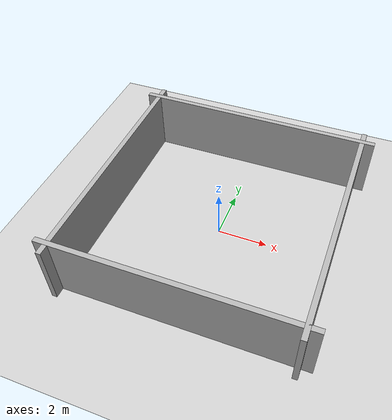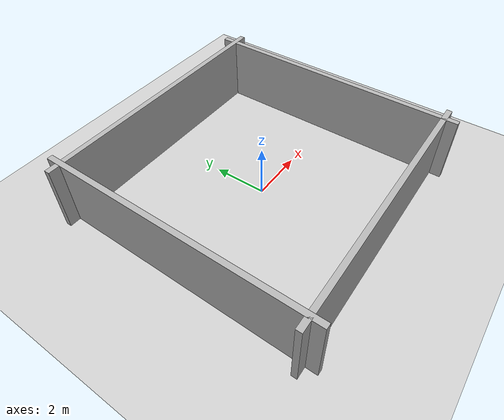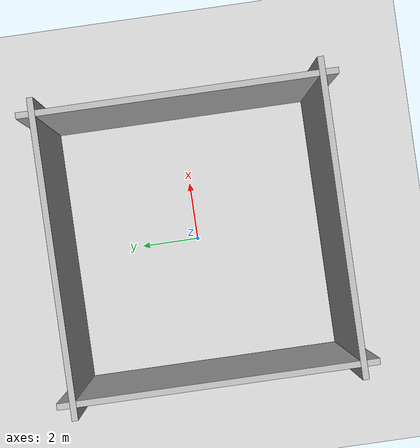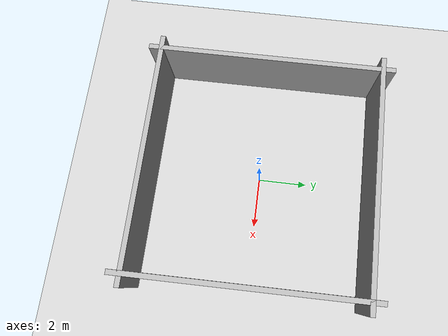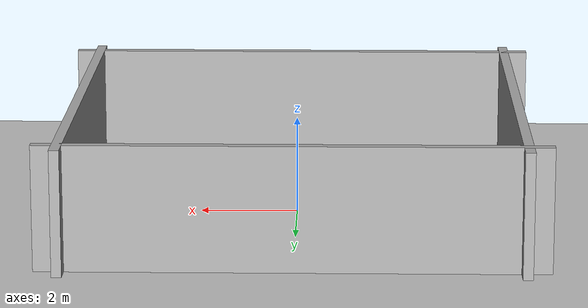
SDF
<?xml version="1.0" ?>
<sdf version="1.8">
  <world name="default">

    <!-- Physics settings -->
    <physics name="1ms" type="ignored">
      <max_step_size>0.001</max_step_size>
      <real_time_factor>1.0</real_time_factor>
    </physics>

    <!-- Plugin for physics -->
    <plugin
      filename="gz-sim-physics-system"
      name="gz::sim::systems::Physics">
    </plugin>

    <!-- Plugin for user commands -->
    <plugin
      filename="gz-sim-user-commands-system"
      name="gz::sim::systems::UserCommands">
    </plugin>

    <!-- Plugin for scene broadcaster -->
    <plugin
      filename="gz-sim-scene-broadcaster-system"
      name="gz::sim::systems::SceneBroadcaster">
    </plugin>

    <!-- Plugin for sensor updates -->
    <plugin
      filename="gz-sim-sensors-system"
      name="gz::sim::systems::Sensors">
      <render_engine>ogre2</render_engine>
    </plugin>

    <!-- Sun light -->
    <light type="directional" name="sun">
      <cast_shadows>true</cast_shadows>
      <pose>0 0 10 0 0 0</pose>
      <diffuse>0.8 0.8 0.8 1</diffuse>
      <specular>0.2 0.2 0.2 1</specular>
      <attenuation>
        <range>1000</range>
        <constant>0.9</constant>
        <linear>0.01</linear>
        <quadratic>0.001</quadratic>
      </attenuation>
      <direction>-0.5 0.1 -0.9</direction>
    </light>

    <!-- Ground plane -->
    <model name="ground_plane">
      <static>true</static>
      <link name="link">
        <collision name="collision">
          <geometry>
            <plane>
              <normal>0 0 1</normal>
              <size>100 100</size>
            </plane>
          </geometry>
          <surface>
            <friction>
              <ode>
                <mu>0.8</mu>
                <mu2>0.8</mu2>
              </ode>
            </friction>
          </surface>
        </collision>
        <visual name="visual">
          <geometry>
            <plane>
              <normal>0 0 1</normal>
              <size>100 100</size>
            </plane>
          </geometry>
          <material>
            <ambient>0.8 0.8 0.8 1</ambient>
            <diffuse>0.8 0.8 0.8 1</diffuse>
            <specular>0.8 0.8 0.8 1</specular>
          </material>
        </visual>
      </link>
    </model>

     <model name="wall_front">
    <static>true</static>
    <pose>0 4.5 1.25 0 0 0</pose>
    <link name="wall_link_front">
      <visual name="wall_visual_front">
        <geometry>
          <box>
            <size>10 0.2 2.5</size>
          </box>
        </geometry>
        <material>
          <diffuse>0.7 0.7 0.7 1</diffuse>
          <specular>0.2 0.2 0.2 1</specular>
        </material>
      </visual>
      <collision name="wall_collision_front">
        <geometry>
          <box>
            <size>10 0.2 2.5</size>
          </box>
        </geometry>
        <surface>
          <friction>
            <ode>
              <mu>1</mu>
              <mu2>1</mu2>
            </ode>
          </friction>
          <contact>
            <ode>
              <kp>1000000</kp>
              <kd>100</kd>
            </ode>
          </contact>
        </surface>
      </collision>
    </link>
  </model>

  <model name="wall_back">
    <static>true</static>
    <pose>0 -4.5 1.25 0 0 0</pose>
    <link name="wall_link_back">
      <visual name="wall_visual_back">
        <geometry>
          <box>
            <size>10 0.2 2.5</size>
          </box>
        </geometry>
        <material>
          <diffuse>0.7 0.7 0.7 1</diffuse>
          <specular>0.2 0.2 0.2 1</specular>
        </material>
      </visual>
      <collision name="wall_collision_back">
        <geometry>
          <box>
            <size>10 0.2 2.5</size>
          </box>
        </geometry>
        <surface>
          <friction>
            <ode>
              <mu>1</mu>
              <mu2>1</mu2>
            </ode>
          </friction>
          <contact>
            <ode>
              <kp>1000000</kp>
              <kd>100</kd>
            </ode>
          </contact>
        </surface>
      </collision>
    </link>
  </model>

  <model name="wall_left">
    <static>true</static>
    <pose>-4.5 0 1.25 0 0 0</pose>
    <link name="wall_link_left">
      <visual name="wall_visual_left">
        <geometry>
          <box>
            <size>0.2 10 2.5</size>
          </box>
        </geometry>
        <material>
          <diffuse>0.7 0.7 0.7 1</diffuse>
          <specular>0.2 0.2 0.2 1</specular>
        </material>
      </visual>
      <collision name="wall_collision_left">
        <geometry>
          <box>
            <size>0.2 10 2.5</size>
          </box>
        </geometry>
        <surface>
          <friction>
            <ode>
              <mu>1</mu>
              <mu2>1</mu2>
            </ode>
          </friction>
          <contact>
            <ode>
              <kp>1000000</kp>
              <kd>100</kd>
            </ode>
          </contact>
        </surface>
      </collision>
    </link>
  </model>

  <model name="wall_right">
    <static>true</static>
    <pose>4.5 0 1.25 0 0 0</pose>
    <link name="wall_link_right">
      <visual name="wall_visual_right">
        <geometry>
          <box>
            <size>0.2 10 2.5</size>
          </box>
        </geometry>
        <material>
          <diffuse>0.7 0.7 0.7 1</diffuse>
          <specular>0.2 0.2 0.2 1</specular>
        </material>
      </visual>
      <collision name="wall_collision_right">
        <geometry>
          <box>
            <size>0.2 10 2.5</size>
          </box>
        </geometry>
        <surface>
          <friction>
            <ode>
              <mu>1</mu>
              <mu2>1</mu2>
            </ode>
          </friction>
          <contact>
            <ode>
              <kp>1000000</kp>
              <kd>100</kd>
            </ode>
          </contact>
        </surface>
      </collision>
    </link>
  </model>

  </world>
</sdf>
